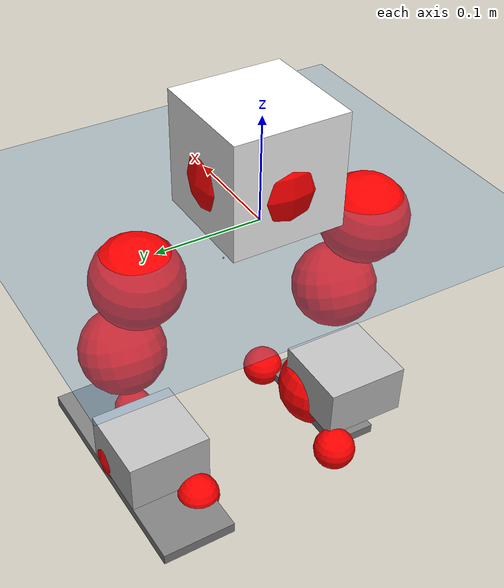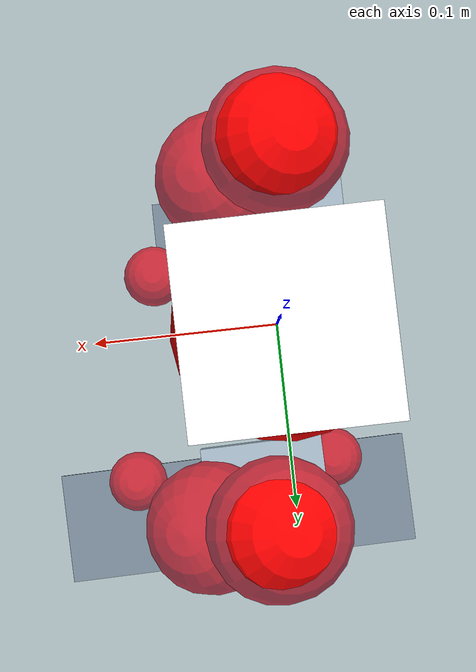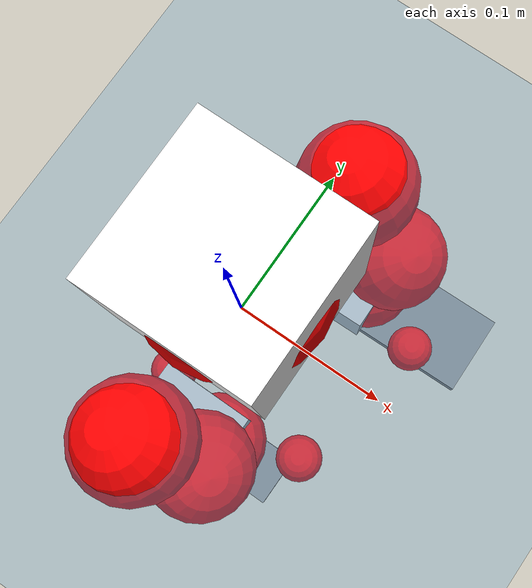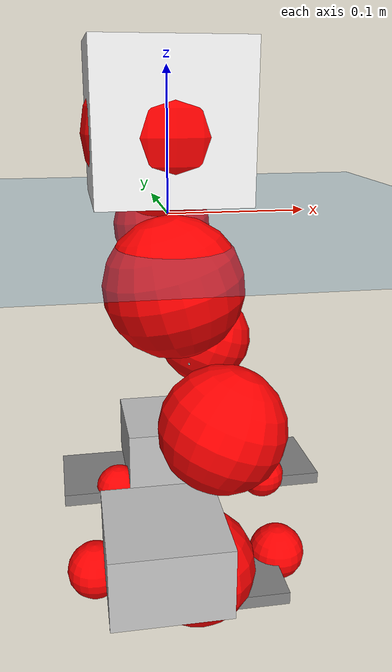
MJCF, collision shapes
<mujoco model="pi_12dof_release_v1">
  <compiler angle="radian" assetdir="assets" balanceinertia="true" inertiafromgeom="false"/>

  <option timestep="0.005" density="1.2" viscosity="2e-05"/>

  <size nkey="1"/>

  <visual>
    <quality shadowsize="8192"/>
    <map shadowclip="0.5"/>
  </visual>

  <default>
    <default class="/">
      <joint armature="0.01" damping="0.01" frictionloss="0.01"/>
      <geom contype="0" conaffinity="0" group="1" solref="-1000 -80"/>
      <site size="0.01 0.005 0.005" group="5"/>
      <general forcelimited="true" biastype="affine" gainprm="20" biasprm="0 -20 -0.5"/>
      <default class="foot">
        <geom size="0.0845 0.036 0.005" type="box" condim="6" group="4" priority="1" friction="0.9 0.2 0.2" solimp="0.015 1 0.005"/>
      </default>
      <default class="reward_collision_sphere">
        <geom group="5" rgba="1 0 0 1"/>
      </default>
    </default>
  </default>

  <asset>
    <texture type="skybox" colorspace="auto" name="//unnamed_texture_0" builtin="gradient" rgb1="0.95 0.95 0.95" rgb2="0.95 0.95 0.95" width="100" height="600"/>
    <texture type="2d" colorspace="auto" name="texplane" builtin="checker" rgb1="0.345 0.575 0.748" rgb2="0.345 0.575 0.748" markrgb="1 1 1" width="512" height="512"/>
    <material name="MatPlane" class="/" texture="texplane" texuniform="true" texrepeat="2 2" specular="0.9"/>
    <mesh name="baselink_1" class="/" file="baselink_1.STL"/>
    <mesh name="r_hip_pitch_link" class="/" file="r_hip_pitch_link.STL"/>
    <mesh name="r_hip_roll_link" class="/" file="r_hip_roll_link.STL"/>
    <mesh name="r_thigh_link" class="/" file="r_thigh_link.STL"/>
    <mesh name="r_calf_link" class="/" file="r_calf_link.STL"/>
    <mesh name="r_ankle_pitch_link" class="/" file="r_ankle_pitch_link.STL"/>
    <mesh name="r_ankle_roll_link" class="/" file="r_ankle_roll_link.STL"/>
    <mesh name="l_hip_pitch_link" class="/" file="l_hip_pitch_link.STL"/>
    <mesh name="l_hip_roll_link" class="/" file="l_hip_roll_link.STL"/>
    <mesh name="l_thigh_link" class="/" file="l_thigh_link.STL"/>
    <mesh name="l_calf_link" class="/" file="l_calf_link.STL"/>
    <mesh name="l_ankle_pitch_link" class="/" file="l_ankle_pitch_link.STL"/>
    <mesh name="l_ankle_roll_link" class="/" file="l_ankle_roll_link.STL"/>
  </asset>

  <worldbody>
    <geom name="floor" class="/" size="100 100 0.125" type="plane" group="0" material="MatPlane"/>
    <light name="toplight_shadow" class="/" pos="0 0 5" dir="0.0990148 0.0990148 -0.990148" type="directional" ambient="0.04 0.04 0.04" diffuse="0.55 0.55 0.55" specular="0.12 0.12 0.12"/>
    <light name="toplight_fill" class="/" pos="0 0 5" dir="0.0990148 0.0990148 -0.990148" type="directional" castshadow="false" ambient="0.04 0.04 0.04" diffuse="0.3 0.3 0.3" specular="0.08 0.08 0.08"/>
    <body name="trunk" pos="-0.00153798 0.00490462 0.000702484" quat="0.999997 -0.000466279 0.00114936 0.00214988">
      <inertial pos="0.00619185 0.00952786 0.0262732" quat="0.698674 0.00557729 0.0258664 0.714951" mass="2.64087" diaginertia="0.0144653 0.046565 0.00123523"/>
      <joint name="//unnamed_joint_0" type="free"/>
      <geom name="//unnamed_geom_1" class="/" type="mesh" density="0" rgba="1 1 1 1" mesh="baselink_1"/>
      <geom name="//unnamed_geom_2" class="/" size="0.052903 0.052903 0.052903" pos="0 0 0.0624719" type="box" rgba="1 1 1 1"/>
      <geom name="//unnamed_geom_3" class="reward_collision_sphere" size="0.0581933" pos="0 0 0.0546629"/>
      <site name="imu" class="/" pos="-0.00841459 0.00952647 0.00953479" size="0.0105806"/>
      <camera name="track" class="/" pos="0 -2.71938 0" quat="0.707107 0.707107 0 0" mode="trackcom"/>
      <camera name="ego_camera" class="/" pos="0.0775193 0 0.140562" quat="-0.5 -0.5 0.5 0.5"/>
      <body name="r_hip_pitch_link" pos="-0.00328866 -0.0287965 -0.0244474" quat="0.992198 -8.23426e-05 -0.124674 5.13278e-06">
        <inertial pos="0.00250851 -0.0682468 0.003833" quat="-0.0465216 0.738157 -0.0316267 0.672279" mass="0.45103" diaginertia="0.000125883 0.000473256 2.37083e-05"/>
        <joint name="r_hip_pitch_joint" class="/" pos="0 0 0" axis="-0.0022741 -0.999979 0.00610945" range="-1.83577 1.1757" armature="0.00952433" damping="0" frictionloss="0.00588225"/>
        <geom name="//unnamed_geom_4" class="/" type="mesh" density="0" rgba="0.75294 0.75294 0.75294 1" mesh="r_hip_pitch_link"/>
        <geom name="//unnamed_geom_5" class="/" size="0.00052903 0.00052903 0.00052903" type="box" rgba="0.75294 0.75294 0.75294 1"/>
        <body name="r_hip_roll_link" pos="-0.00716373 -0.0802455 -0.000114045" quat="0.999987 0.00189459 -0.000539249 -0.00473169">
          <inertial pos="-4.32379e-06 -0.0103061 -0.0491899" quat="0.707266 -0.083833 -0.0751801 0.697922" mass="0.448222" diaginertia="0.000439931 0.00115467 3.81283e-05"/>
          <joint name="r_hip_roll_joint" class="/" pos="0 0 0" axis="-0.999881 0.0108469 -0.0110115" stiffness="0.0127206" range="-0.0991562 0.47252" armature="0.00684775" damping="0" frictionloss="0.00967712"/>
          <geom name="//unnamed_geom_6" class="/" type="mesh" density="0" rgba="0.75294 0.75294 0.75294 1" mesh="r_hip_roll_link"/>
          <geom name="//unnamed_geom_7" class="/" size="0.00052903 0.00052903 0.00052903" type="box" rgba="0.75294 0.75294 0.75294 1"/>
          <geom name="//unnamed_geom_8" class="reward_collision_sphere" size="0.0423224"/>
          <body name="r_thigh_link" pos="-0.00318228 0.00157659 -0.0508837" quat="0.999999 0.000656704 -0.00112261 -0.000648681">
            <inertial pos="0.00816535 0.00606349 -0.0305001" quat="0.735145 0.677886 0.00557163 0.000815596" mass="0.138988" diaginertia="0.000154727 0.000413725 1.73788e-05"/>
            <joint name="r_thigh_joint" class="/" pos="0 0 0" axis="-0.0126932 0.0355425 -0.999288" stiffness="0.0439078" range="-0.110148 0.785777" armature="0.00650648" damping="0.0573973" frictionloss="0.00564025"/>
            <geom name="//unnamed_geom_9" class="/" type="mesh" density="0" rgba="0.75294 0.75294 0.75294 1" mesh="r_thigh_link"/>
            <geom name="//unnamed_geom_10" class="/" size="0.00052903 0.00052903 0.00052903" type="box" rgba="0.75294 0.75294 0.75294 1"/>
            <body name="r_calf_link" pos="0.00986853 0.00130147 -0.0513913" quat="0.947643 -0.0001535 0.319331 -3.65328e-05">
              <inertial pos="-0.00204751 -0.0031919 -0.0519518" quat="0.998992 -0.00366072 0.0318733 0.0313821" mass="1.00281" diaginertia="0.00452579 0.0162492 5.09734e-05"/>
              <joint name="r_calf_joint" class="/" pos="0 0 0" axis="0.00551448 -0.998618 0.0522579" stiffness="0.0122942" range="-1.58494 0.62874" armature="0.00981915" damping="0.012344" frictionloss="0.00609077"/>
              <geom name="//unnamed_geom_11" class="/" type="mesh" density="0" rgba="0.75294 0.75294 0.75294 1" mesh="r_calf_link"/>
              <geom name="//unnamed_geom_12" class="/" size="0.00052903 0.00052903 0.00052903" type="box" rgba="0.75294 0.75294 0.75294 1"/>
              <geom name="//unnamed_geom_13" class="reward_collision_sphere" size="0.0423224"/>
              <body name="r_ankle_pitch_link" pos="0.00171062 0.00548696 -0.101623" quat="0.979945 6.82977e-05 -0.19927 -5.55093e-05">
                <inertial pos="0.00178495 0.00937492 -0.00873085" quat="0.00622834 0.710427 -0.00121926 0.703742" mass="0.207287" diaginertia="0.00038543 0.00102729 3.46766e-05"/>
                <joint name="r_ankle_pitch_joint" class="/" pos="0 0 0" axis="-0.00208568 -0.999998 -0.000275408" stiffness="0.00615614" range="-1.19792 0.67539" armature="0.00707029" damping="0.0113885" frictionloss="0.00633121"/>
                <geom name="//unnamed_geom_14" class="/" type="mesh" density="0" rgba="0.75294 0.75294 0.75294 1" mesh="r_ankle_pitch_link"/>
                <geom name="//unnamed_geom_15" class="/" size="0.0412643 0.0423224 0.0264515" type="box" rgba="0.75294 0.75294 0.75294 1"/>
                <body name="r_ankle_roll_link" pos="0.0765715 0.0124668 -0.0081224" quat="1 -3.65409e-05 -0.000114002 -6.95374e-05">
                  <inertial pos="-0.0203733 -0.0044499 -0.00951862" quat="0.556852 0.435945 0.42733 0.563256" mass="0.538572" diaginertia="0.00119059 0.00390656 7.55993e-05"/>
                  <joint name="r_ankle_roll_joint" class="/" pos="0 0 0" axis="-0.998443 -0.0202267 0.0519781" range="-0.355983 0.0197734" armature="0.00953159" damping="0" frictionloss="0.0101749"/>
                  <geom name="//unnamed_geom_16" class="/" type="mesh" density="0" rgba="0.75294 0.75294 0.75294 1" mesh="r_ankle_roll_link"/>
                  <geom name="//unnamed_geom_17" class="/" type="mesh" rgba="0.75294 0.75294 0.75294 1" mesh="r_ankle_roll_link"/>
                  <geom name="right_foot" class="foot" size="0.0645456 0.0233332 0.00476404" pos="-0.0527131 0 -0.0343596"/>
                  <geom name="//unnamed_geom_19" class="reward_collision_sphere" size="0.0423224" pos="-0.0516795 0 -0.015618"/>
                  <geom name="//unnamed_geom_20" class="reward_collision_sphere" size="0.0211612" pos="0.0155039 0.0271938 -0.031236"/>
                  <geom name="//unnamed_geom_21" class="reward_collision_sphere" size="0.0211612" pos="-0.124031 0.0271938 -0.031236"/>
                  <site name="right_foot" class="foot" pos="-0.0527131 0 -0.0343596" size="0.0105806"/>
                </body>
              </body>
            </body>
          </body>
        </body>
      </body>
      <body name="l_hip_pitch_link" pos="0.00571448 0.0289678 -0.0316194" quat="0.992297 -0.0007503 -0.123879 0.000551578">
        <inertial pos="0.00174991 0.0733531 -0.0043734" quat="-0.037377 0.705641 0.0293234 0.706976" mass="0.532524" diaginertia="0.000153201 0.00051671 2.84717e-05"/>
        <joint name="l_hip_pitch_joint" class="/" pos="0 0 0" axis="-0.00505021 0.999985 -0.00217028" range="-1.20708 1.60062" armature="0.0100399" damping="0.0277158" frictionloss="0.00994016"/>
        <geom name="//unnamed_geom_22" class="/" type="mesh" density="0" rgba="0.75294 0.75294 0.75294 1" mesh="l_hip_pitch_link"/>
        <geom name="//unnamed_geom_23" class="/" size="0.00052903 0.00052903 0.00052903" type="box" rgba="0.75294 0.75294 0.75294 1"/>
        <body name="l_hip_roll_link" pos="0.00667251 0.0800826 -7.09929e-05" quat="0.99999 0.000313545 0.00145655 0.00412755">
          <inertial pos="0.0024192 -0.0105764 -0.0487843" quat="0.689618 -0.102257 -0.0876076 0.711544" mass="0.519186" diaginertia="0.000412856 0.00123818 3.38212e-05"/>
          <joint name="l_hip_roll_joint" class="/" pos="0 0 0" axis="-0.999646 -0.00746156 0.0255521" range="-0.531303 0.091851" armature="0.00540866" damping="0.008282" frictionloss="0.0124831"/>
          <geom name="//unnamed_geom_24" class="/" type="mesh" density="0" rgba="0.75294 0.75294 0.75294 1" mesh="l_hip_roll_link"/>
          <geom name="//unnamed_geom_25" class="/" size="0.00052903 0.00052903 0.00052903" type="box" rgba="0.75294 0.75294 0.75294 1"/>
          <geom name="//unnamed_geom_26" class="reward_collision_sphere" size="0.0423224"/>
          <body name="l_thigh_link" pos="0.00291184 -0.000552117 -0.0596164" quat="0.999998 0.000990118 -0.000268508 0.00139827">
            <inertial pos="0.00251497 -0.00855789 -0.0400055" quat="0.671665 0.740812 0.00746461 -0.00286675" mass="0.136357" diaginertia="0.000159645 0.000477718 1.83894e-05"/>
            <joint name="l_thigh_joint" class="/" pos="0 0 0" axis="0.00017922 0.00278215 -0.999996" range="-0.622619 0.291497" armature="0.0126041" damping="0.0435082" frictionloss="0.0100919"/>
            <geom name="//unnamed_geom_27" class="/" type="mesh" density="0" rgba="0.75294 0.75294 0.75294 1" mesh="l_thigh_link"/>
            <geom name="//unnamed_geom_28" class="/" size="0.00052903 0.00052903 0.00052903" type="box" rgba="0.75294 0.75294 0.75294 1"/>
            <body name="l_calf_link" pos="0.00989135 0.00293158 -0.0553204" quat="0.947616 0.00530683 0.319369 0.000642766">
              <inertial pos="0.00260156 0.00570313 -0.056899" quat="0.999984 -0.00327714 0.0013622 0.00436201" mass="1.00432" diaginertia="0.00427825 0.016719 4.53977e-05"/>
              <joint name="l_calf_joint" class="/" pos="0 0 0" axis="-0.0133561 0.999828 0.0128553" stiffness="0.0512307" range="-0.79691 1.6761" armature="0.0116885" damping="0.0169867" frictionloss="0.0103837"/>
              <geom name="//unnamed_geom_29" class="/" type="mesh" density="0" rgba="0.75294 0.75294 0.75294 1" mesh="l_calf_link"/>
              <geom name="//unnamed_geom_30" class="/" size="0.00052903 0.00052903 0.00052903" type="box" rgba="0.75294 0.75294 0.75294 1"/>
              <geom name="//unnamed_geom_31" class="reward_collision_sphere" size="0.0423224"/>
              <body name="l_ankle_pitch_link" pos="0.0053305 -0.00622006 -0.107766" quat="0.980167 -0.000541735 -0.198172 0.000541965">
                <inertial pos="0.0052487 0.00484973 -0.00253045" quat="0.00228244 0.704352 0.00280898 0.709841" mass="0.207584" diaginertia="0.000356858 0.00104055 3.69844e-05"/>
                <joint name="l_ankle_pitch_joint" class="/" pos="0 0 0" axis="0.00859192 0.999961 -0.00205338" range="-0.542366 1.27737" armature="0.0144962" damping="0" frictionloss="0.0128667"/>
                <geom name="//unnamed_geom_32" class="/" type="mesh" density="0" rgba="0.75294 0.75294 0.75294 1" mesh="l_ankle_pitch_link"/>
                <geom name="//unnamed_geom_33" class="/" size="0.0412643 0.0423224 0.0264515" type="box" rgba="0.75294 0.75294 0.75294 1"/>
                <body name="l_ankle_roll_link" pos="0.0740618 0.00283074 -0.00277081" quat="1 -0.000116643 -0.000435447 -0.000249622">
                  <inertial pos="-0.0210236 0.000932769 -0.0148813" quat="0.56009 0.429885 0.433357 0.560089" mass="0.575294" diaginertia="0.00132454 0.00461199 8.02782e-05"/>
                  <joint name="l_ankle_roll_joint" class="/" pos="0 0 0" axis="-0.999983 -0.00573361 -0.000787617" stiffness="0.00475564" range="-0.347514 0.184196" armature="0.0099978" damping="0.0529155" frictionloss="0.0113142"/>
                  <geom name="//unnamed_geom_34" class="/" type="mesh" density="0" rgba="0.75294 0.75294 0.75294 1" mesh="l_ankle_roll_link"/>
                  <geom name="//unnamed_geom_35" class="/" type="mesh" rgba="0.75294 0.75294 0.75294 1" mesh="l_ankle_roll_link"/>
                  <geom name="left_foot" class="foot" size="0.12236 0.0377793 0.00559825" pos="-0.0527131 0 -0.0343596"/>
                  <geom name="//unnamed_geom_37" class="reward_collision_sphere" size="0.0423224" pos="-0.0516795 0 -0.015618"/>
                  <geom name="//unnamed_geom_38" class="reward_collision_sphere" size="0.0211612" pos="0.0155039 -0.0271938 -0.031236"/>
                  <geom name="//unnamed_geom_39" class="reward_collision_sphere" size="0.0211612" pos="-0.124031 -0.0271938 -0.031236"/>
                  <site name="left_foot" class="foot" pos="-0.0527131 0 -0.0343596" size="0.0105806"/>
                </body>
              </body>
            </body>
          </body>
        </body>
      </body>
    </body>
  </worldbody>

  <contact>
    <pair class="/" geom1="floor" geom2="right_foot" name="//unnamed_contact_1"/>
    <pair class="/" geom1="floor" geom2="left_foot" name="//unnamed_contact_0"/>
  </contact>

  <actuator>
    <general name="r_hip_pitch_joint" class="/" joint="r_hip_pitch_joint" forcerange="-23.8376 23.8376" gainprm="22.5494" biasprm="0 -22.5494 -0.529113"/>
    <general name="r_hip_roll_joint" class="/" joint="r_hip_roll_joint" forcerange="-13.7812 13.7812" gainprm="22.5494" biasprm="0 -22.5494 -0.529113"/>
    <general name="r_thigh_joint" class="/" joint="r_thigh_joint" forcerange="-22.5798 22.5798" gainprm="22.5494" biasprm="0 -22.5494 -0.529113"/>
    <general name="r_calf_joint" class="/" joint="r_calf_joint" forcerange="-23.6583 23.6583" gainprm="22.5494" biasprm="0 -22.5494 -0.529113"/>
    <general name="r_ankle_pitch_joint" class="/" joint="r_ankle_pitch_joint" forcerange="-21.7366 21.7366" gainprm="22.5494" biasprm="0 -22.5494 -0.529113"/>
    <general name="r_ankle_roll_joint" class="/" joint="r_ankle_roll_joint" forcerange="-17.0607 17.0607" gainprm="22.5494" biasprm="0 -22.5494 -0.529113"/>
    <general name="l_hip_pitch_joint" class="/" joint="l_hip_pitch_joint" forcerange="-20.1356 20.1356" gainprm="22.5494" biasprm="0 -22.5494 -0.529113"/>
    <general name="l_hip_roll_joint" class="/" joint="l_hip_roll_joint" forcerange="-21.6584 21.6584" gainprm="22.5494" biasprm="0 -22.5494 -0.529113"/>
    <general name="l_thigh_joint" class="/" joint="l_thigh_joint" forcerange="-23.7346 23.7346" gainprm="22.5494" biasprm="0 -22.5494 -0.529113"/>
    <general name="l_calf_joint" class="/" joint="l_calf_joint" forcerange="-24.7862 24.7862" gainprm="22.5494" biasprm="0 -22.5494 -0.529113"/>
    <general name="l_ankle_pitch_joint" class="/" joint="l_ankle_pitch_joint" forcerange="-20.5997 20.5997" gainprm="22.5494" biasprm="0 -22.5494 -0.529113"/>
    <general name="l_ankle_roll_joint" class="/" joint="l_ankle_roll_joint" forcerange="-26.9818 26.9818" gainprm="22.5494" biasprm="0 -22.5494 -0.529113"/>
  </actuator>

  <sensor>
    <gyro site="imu" name="imu_angular_velocity"/>
    <velocimeter site="imu" name="imu_linear_velocity"/>
    <framelinvel objtype="site" objname="left_foot" name="left_foot_global_linear_velocity"/>
    <framelinvel objtype="site" objname="right_foot" name="right_foot_global_linear_velocity"/>
  </sensor>

  <keyframe>
    <key name="home" qpos="0 0 0.291 1 0 0 0 0.4 0 0 -0.8 0.4 0 -0.4 0 0 0.8 -0.4 0"/>
  </keyframe>
</mujoco>
